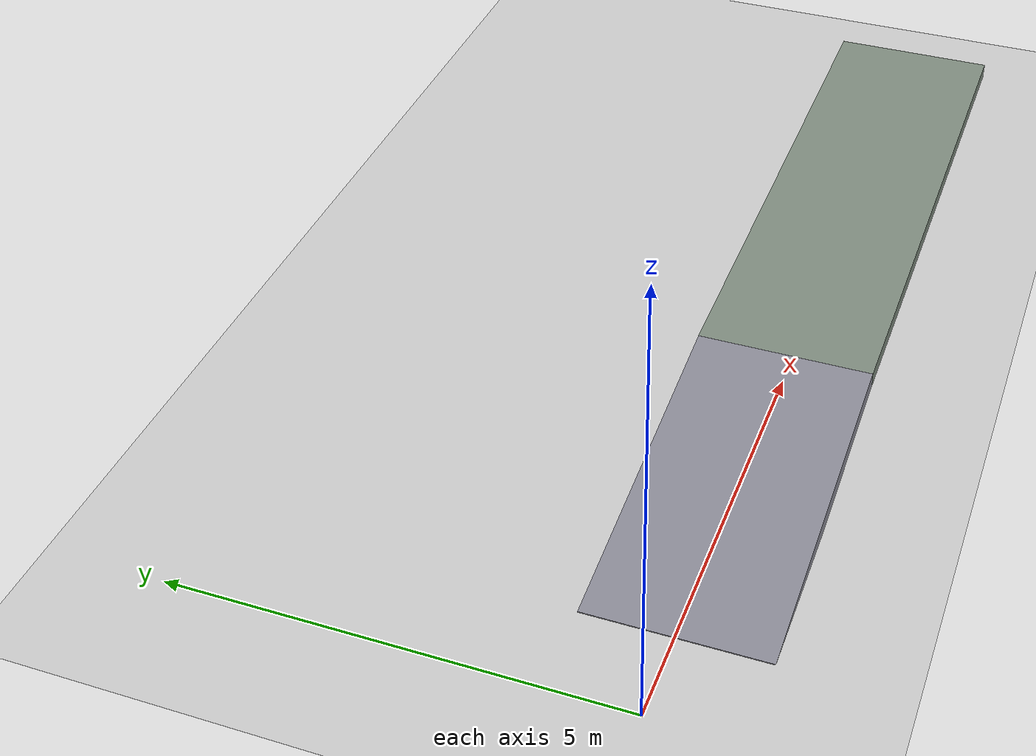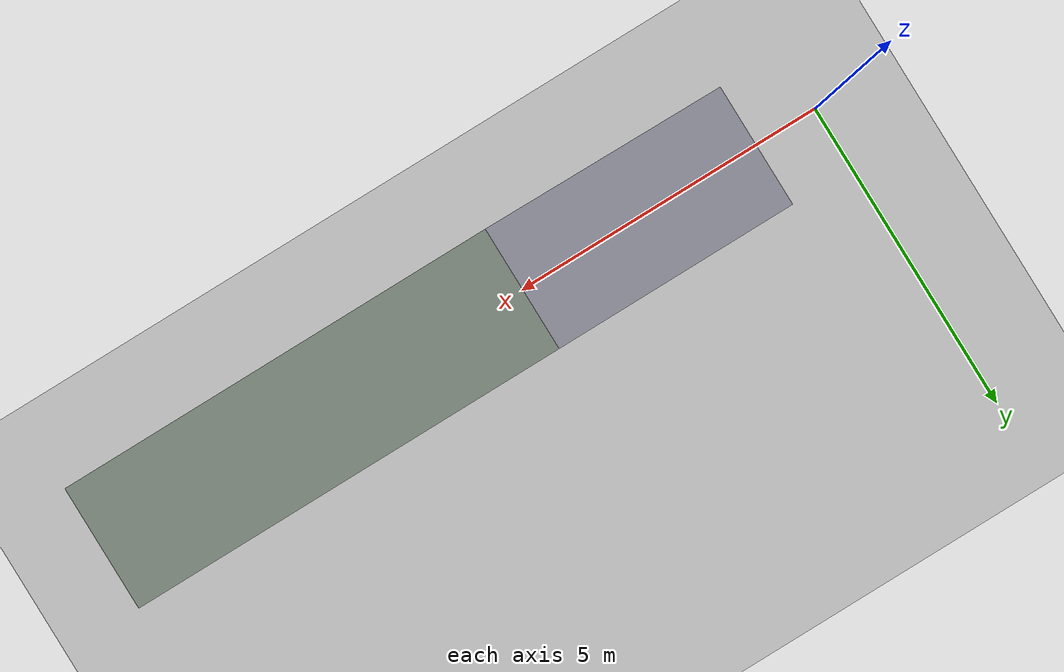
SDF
<?xml version="1.0"?>
<sdf version="1.9">
  <world name="quadruped_ramp">
    <physics name="1ms" type="ignored">
      <max_step_size>0.001</max_step_size>
      <real_time_factor>1.0</real_time_factor>
    </physics>

    <plugin filename="gz-sim-physics-system"
            name="gz::sim::systems::Physics"/>
    <plugin filename="gz-sim-user-commands-system"
            name="gz::sim::systems::UserCommands"/>
    <plugin filename="gz-sim-scene-broadcaster-system"
            name="gz::sim::systems::SceneBroadcaster"/>
    <plugin filename="gz-sim-sensors-system"
            name="gz::sim::systems::Sensors">
      <render_engine>ogre2</render_engine>
    </plugin>
    <plugin filename="gz-sim-contact-system"
            name="gz::sim::systems::Contact"/>

    <scene>
      <ambient>1 1 1 1</ambient>
      <background>0.3 0.7 0.9 1</background>
      <shadows>false</shadows>
    </scene>

    <light type="directional" name="sun">
      <pose>0 0 10 0 0 0</pose>
      <diffuse>0.8 0.8 0.8 1</diffuse>
      <specular>0.2 0.2 0.2 1</specular>
      <direction>-0.5 0.1 -0.9</direction>
    </light>

    <model name="ground_plane">
      <static>true</static>
      <link name="link">
        <collision name="collision">
          <geometry>
            <plane><normal>0 0 1</normal><size>100 100</size></plane>
          </geometry>
        </collision>
        <visual name="visual">
          <geometry>
            <plane><normal>0 0 1</normal><size>100 100</size></plane>
          </geometry>
          <material>
            <ambient>0.8 0.8 0.8 1</ambient>
            <diffuse>0.8 0.8 0.8 1</diffuse>
          </material>
        </visual>
      </link>
    </model>

    <model name="rampa">
      <static>true</static>
      <pose>2.9995 0 0.1096 0 -0.10472 0</pose>
      <link name="link">
        <collision name="collision">
          <geometry><box><size>4.0 2.0 0.2</size></box></geometry>
        </collision>
        <visual name="visual">
          <geometry><box><size>4.0 2.0 0.2</size></box></geometry>
          <material>
            <ambient>0.55 0.55 0.6 1</ambient>
            <diffuse>0.55 0.55 0.6 1</diffuse>
          </material>
        </visual>
      </link>
    </model>

    <model name="plato">
      <static>true</static>
      <pose>8.4890 0 0.3181 0 0 0</pose>
      <link name="link">
        <collision name="collision">
          <geometry><box><size>7.0219 2 0.2</size></box></geometry>
        </collision>
        <visual name="visual">
          <geometry><box><size>7.0219 2 0.2</size></box></geometry>
          <material>
            <ambient>0.5 0.55 0.5 1</ambient>
            <diffuse>0.5 0.55 0.5 1</diffuse>
          </material>
        </visual>
      </link>
    </model>
  </world>
</sdf>
